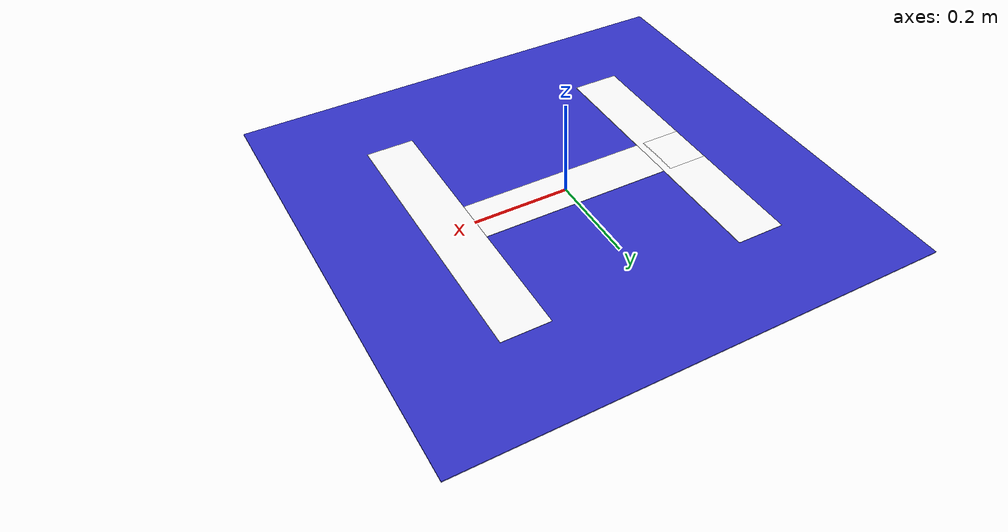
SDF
<?xml version="1.0" ?>
<!--
  FIRA Air - Landing Pad Model
  1m x 1m landing pad with blue background and white H symbol
-->
<sdf version="1.9">
  <model name="landing_pad">
    <static>true</static>
    <link name="link">

      <!-- Blue base pad -->
      <visual name="pad_base">
        <pose>0 0 0.001 0 0 0</pose>
        <geometry>
          <box>
            <size>1 1 0.002</size>
          </box>
        </geometry>
        <material>
          <ambient>0.1 0.1 0.7 1</ambient>
          <diffuse>0.2 0.2 0.8 1</diffuse>
          <specular>0.3 0.3 0.4 1</specular>
        </material>
      </visual>

      <!-- White H - Left vertical bar -->
      <visual name="h_left">
        <pose>-0.25 0 0.003 0 0 0</pose>
        <geometry>
          <box>
            <size>0.1 0.6 0.001</size>
          </box>
        </geometry>
        <material>
          <ambient>1.0 1.0 1.0 1</ambient>
          <diffuse>1.0 1.0 1.0 1</diffuse>
        </material>
      </visual>

      <!-- White H - Right vertical bar -->
      <visual name="h_right">
        <pose>0.25 0 0.003 0 0 0</pose>
        <geometry>
          <box>
            <size>0.1 0.6 0.001</size>
          </box>
        </geometry>
        <material>
          <ambient>1.0 1.0 1.0 1</ambient>
          <diffuse>1.0 1.0 1.0 1</diffuse>
        </material>
      </visual>

      <!-- White H - Horizontal bar -->
      <visual name="h_bar">
        <pose>0 0 0.003 0 0 0</pose>
        <geometry>
          <box>
            <size>0.6 0.1 0.001</size>
          </box>
        </geometry>
        <material>
          <ambient>1.0 1.0 1.0 1</ambient>
          <diffuse>1.0 1.0 1.0 1</diffuse>
        </material>
      </visual>

      <!-- Collision for landing detection -->
      <collision name="collision">
        <pose>0 0 0.001 0 0 0</pose>
        <geometry>
          <box>
            <size>1 1 0.01</size>
          </box>
        </geometry>
        <surface>
          <friction>
            <ode>
              <mu>100</mu>
              <mu2>50</mu2>
            </ode>
          </friction>
        </surface>
      </collision>

    </link>
  </model>
</sdf>
